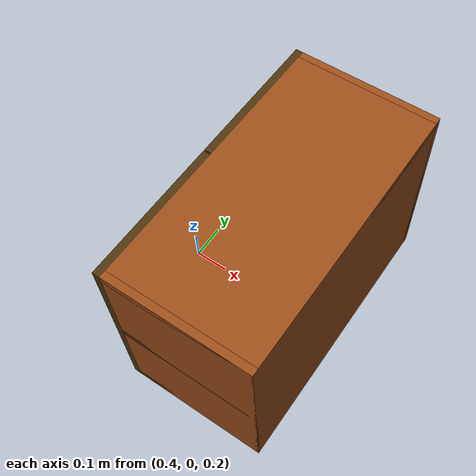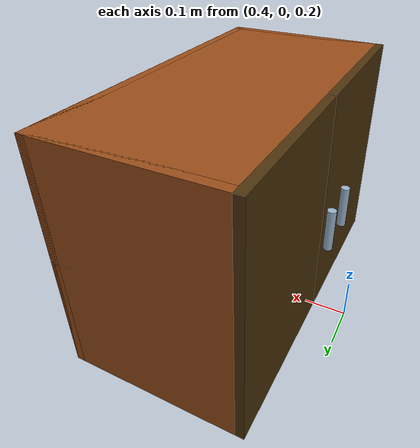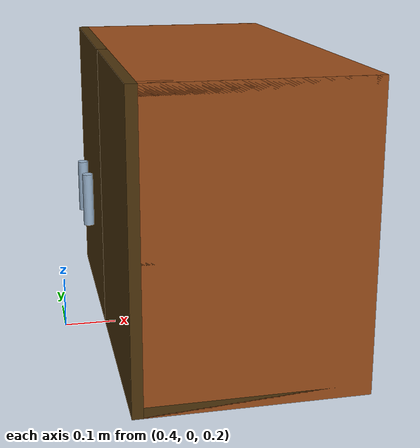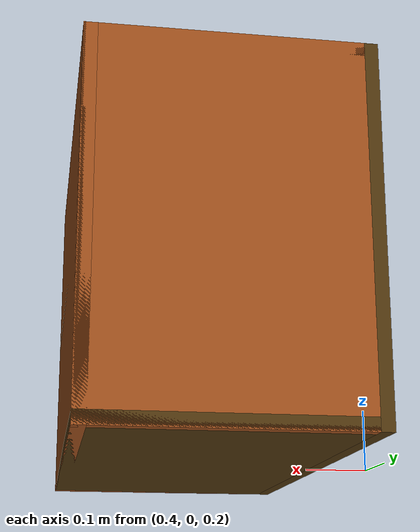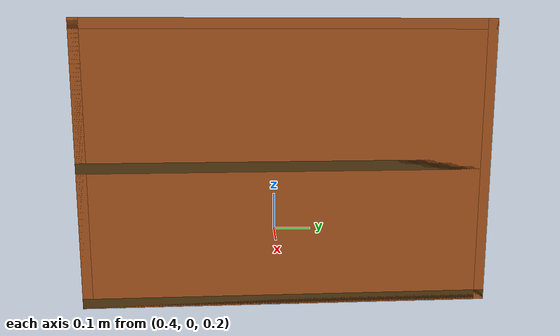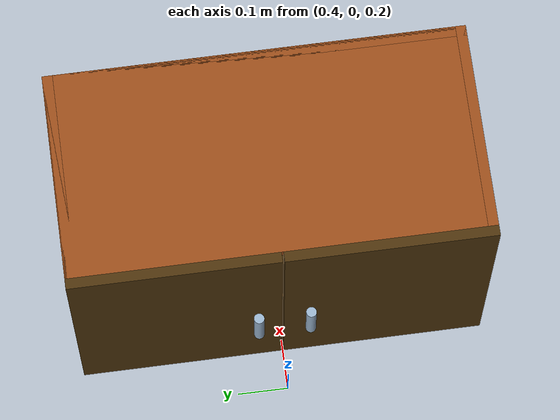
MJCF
<mujoco model="cupboard">
    <compiler angle="radian" autolimits="true" />
    <option impratio="10" />
    <default>
        <default class="visual">
            <geom type="mesh" contype="0" conaffinity="0" group="2" />
        </default>
        <default class="collision">
            <geom type="mesh" group="3" />
        </default>
    </default>

    <asset>
        <material name="wood" rgba="0.3 0.2 0.05 1" />
        <material name="wood_0" rgba="0.6 0.3 0.1 1" />
        <material name="handle" rgba="0.6 0.7 0.8 1" />
    </asset>
    <worldbody>
        <body name="cupboard" pos="0.7 0.0 0.2" euler="0 0 3.14">
            <!-- main body -->
            <geom size="0.2 0.01 0.28" pos="0 -0.39 0.28" class="visual" type="box" material="wood_0" />
            <geom size="0.2 0.01 0.28" pos="0 0.39 0.28" class="visual" type="box" material="wood_0" />
            <geom size="0.2 0.4 0.01" pos="0 0 0.55" class="visual" type="box" material="wood_0" />
            <geom size="0.01 0.4 0.28" pos="-0.19 0 0.28" class="visual" type="box" material="wood_0" />

            <geom size="0.2 0.01 0.28" pos="0 -0.39 0.28" class="collision" type="box" />
            <geom size="0.2 0.01 0.28" pos="0 0.39 0.28" class="collision" type="box" />
            <geom size="0.2 0.4 0.01" pos="0 0 0.55" class="collision" type="box" />
            <geom size="0.01 0.4 0.28" pos="-0.19 0 0.28" class="collision" type="box" />

            <!-- shelves -->
            <body name="top_shelf" pos="0 0 0.28" euler="0 0 0">
                <geom size="0.2 0.4 0.01" class="visual" type="box" material="wood" />
                <geom size="0.2 0.4 0.01" class="collision" type="box" />
            </body>

            <body name="bottom_shelf" pos="0 0 0.01" euler="0 0 0">
                <geom size="0.2 0.4 0.01" class="visual" type="box" material="wood" />
                <geom size="0.2 0.4 0.01" class="collision" type="box" />
            </body>

            <body name="left_door" pos="0.21 -0.4 0.28">
                <joint name="left_door_hinge" type="hinge" axis="0 0 1" limited="true" range="-1.60 0" damping="1.0" frictionloss="0.1" />
                <geom size="0.01 0.199 0.28" pos="0 0.199 0" class="visual" type="box" material="wood" />

                <body name="left_door_handle" pos="0.04 0.35 0" euler="0 0 0">
                    <geom size="0.01 0.05" class="visual" type="cylinder" material="handle" />
                    <geom size="0.01 0.05" class="collision" type="cylinder" />
                </body>
            </body>

            <body name="right_door" pos="0.21 0.4 0.28">
                <joint name="right_door_hinge" type="hinge" axis="0 0 1" limited="true" range="0 1.60" damping="1.0" frictionloss="0.1" />
                <geom size="0.01 0.199 0.28" pos="0 -0.199 0" class="visual" type="box" material="wood" />

                <body name="right_door_handle" pos="0.04 -0.35 0" euler="0 0 0">
                    <geom size="0.01 0.05" class="visual" type="cylinder" material="handle" />
                    <geom size="0.01 0.05" class="collision" type="cylinder" />
                </body>
            </body>
        </body>
    </worldbody>
</mujoco>
